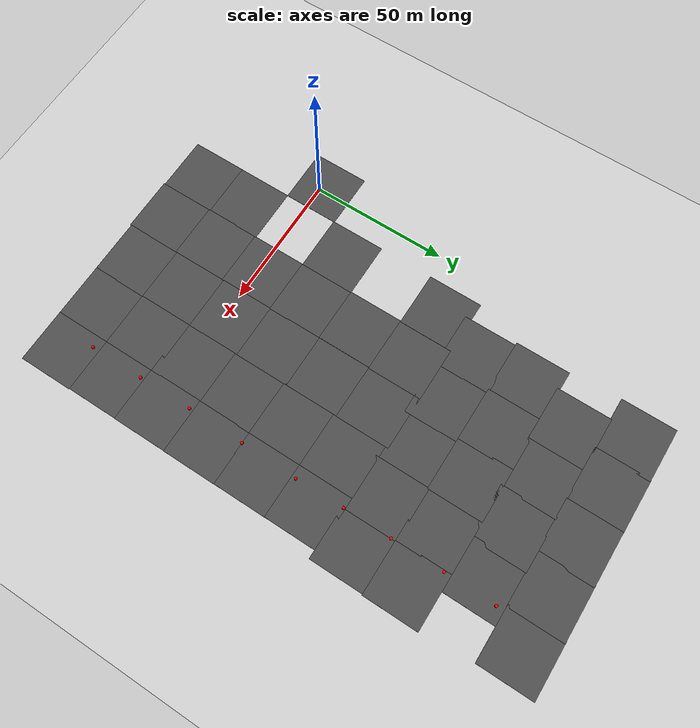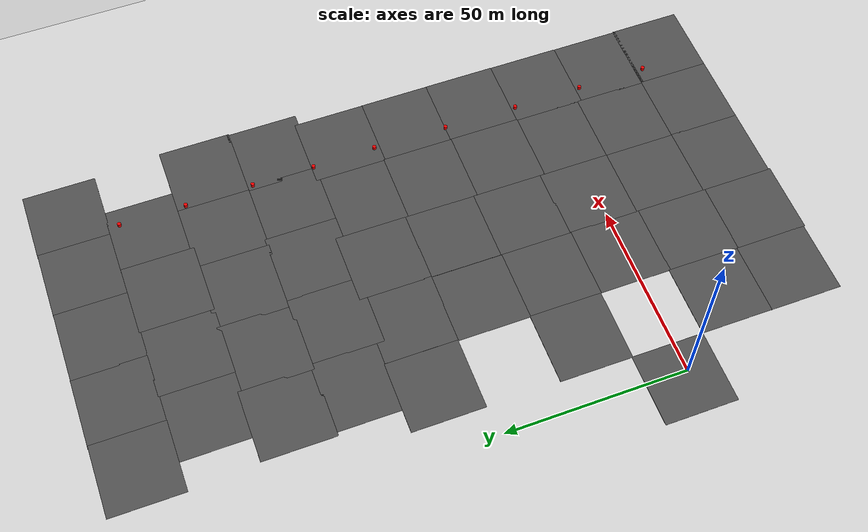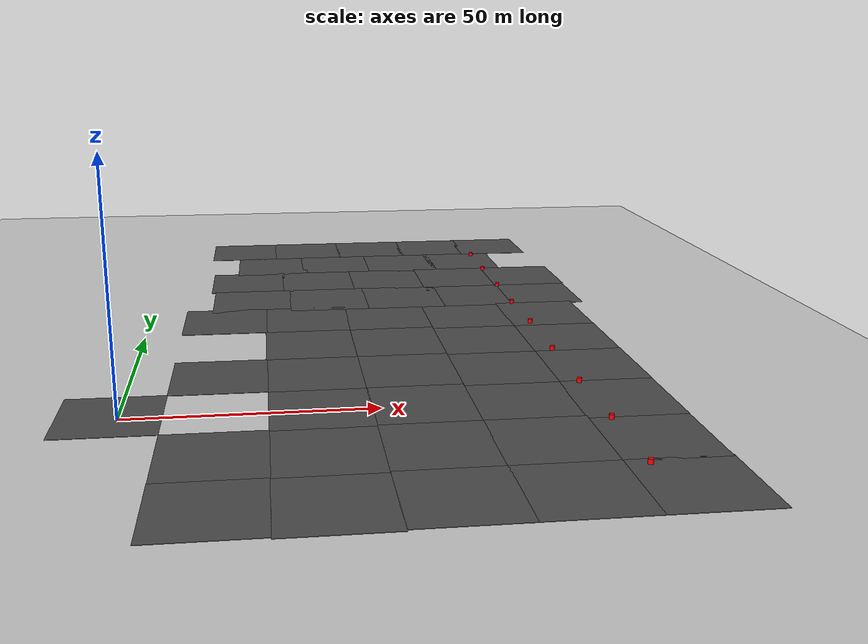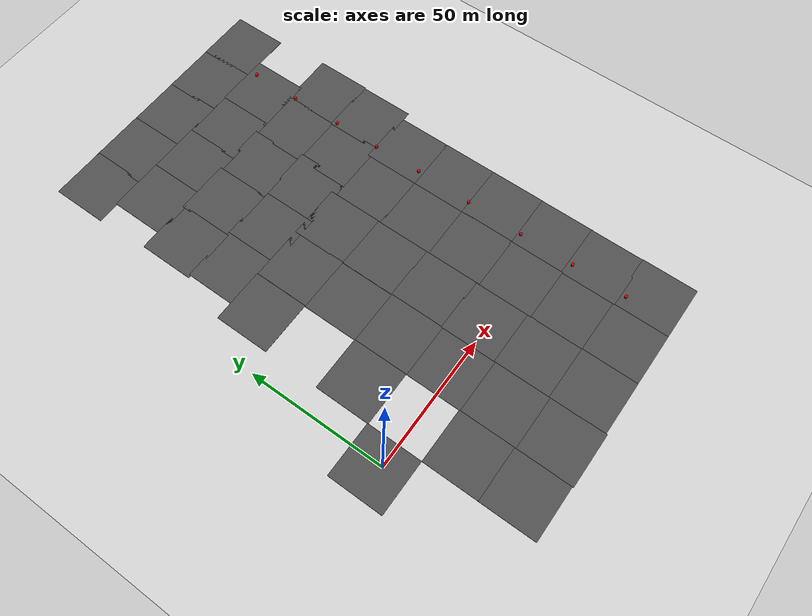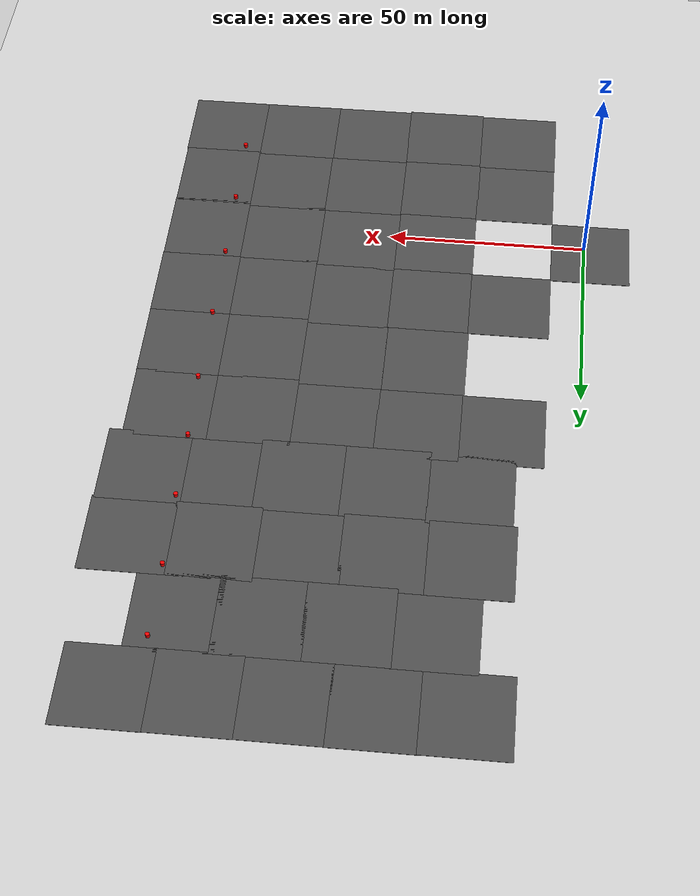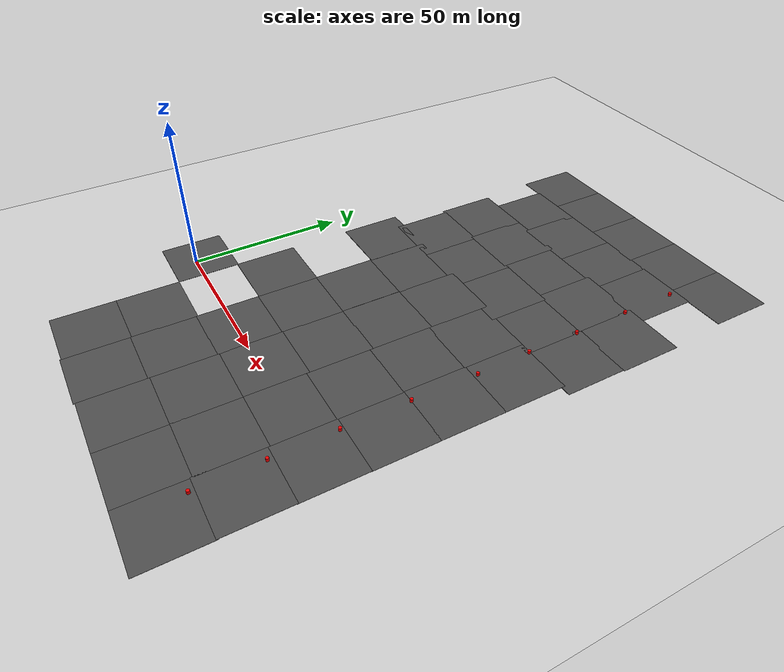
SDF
<sdf version="1.6">
 <world name="default">
  <model name="ground_plane">
   <static>1</static>
   <link name="link">
    <collision name="collision">
     <geometry><plane><normal>0 0 1</normal><size>100 100</size></plane></geometry>
     <surface>
      <contact><collide_bitmask>65535</collide_bitmask></contact>
      <friction><ode><mu>100</mu><mu2>50</mu2></ode></friction>
     </surface>
    </collision>
    <visual name="visual">
     <cast_shadows>0</cast_shadows>
     <geometry><plane><normal>0 0 1</normal><size>100 100</size></plane></geometry>
     <material>
      <script><uri>file://media/materials/scripts/gazebo.material</uri><name>Gazebo/Grey</name></script>
     </material>
    </visual>
   </link>
  </model>
  <model name="asphalt_plane">
   <static>1</static>
   <link name="link">
    <collision name="collision"><geometry><box><size>20 20 0.1</size></box></geometry></collision>
    <visual name="visual">
     <cast_shadows>0</cast_shadows>
     <geometry><box><size>20 20 0.1</size></box></geometry>
     <material>
      <script>
       <uri>model://asphalt_plane/materials/scripts</uri>
       <uri>model://asphalt_plane/materials/textures</uri>
       <name>vrc/asphalt</name>
      </script>
     </material>
    </visual>
   </link>
   <pose>-1.68563 1.69754 0 0 -0 0</pose>
  </model>
  <model name="asphalt_plane_9">
   <static>1</static>
   <link name="link">
    <collision name="collision"><geometry><box><size>20 20 0.1</size></box></geometry></collision>
    <visual name="visual">
     <cast_shadows>0</cast_shadows>
     <geometry><box><size>20 20 0.1</size></box></geometry>
     <material>
      <script>
       <uri>model://asphalt_plane/materials/scripts</uri>
       <uri>model://asphalt_plane/materials/textures</uri>
       <name>vrc/asphalt</name>
      </script>
     </material>
    </visual>
   </link>
   <pose>18.2406 -38.2098 0 0 -0 0</pose>
  </model>
  <model name="asphalt_plane_10">
   <static>1</static>
   <link name="link">
    <collision name="collision"><geometry><box><size>20 20 0.1</size></box></geometry></collision>
    <visual name="visual">
     <cast_shadows>0</cast_shadows>
     <geometry><box><size>20 20 0.1</size></box></geometry>
     <material>
      <script>
       <uri>model://asphalt_plane/materials/scripts</uri>
       <uri>model://asphalt_plane/materials/textures</uri>
       <name>vrc/asphalt</name>
      </script>
     </material>
    </visual>
   </link>
   <pose>18.2862 -18.2897 0 0 -0 0</pose>
  </model>
  <model name="asphalt_plane_12">
   <static>1</static>
   <link name="link">
    <collision name="collision"><geometry><box><size>20 20 0.1</size></box></geometry></collision>
    <visual name="visual">
     <cast_shadows>0</cast_shadows>
     <geometry><box><size>20 20 0.1</size></box></geometry>
     <material>
      <script>
       <uri>model://asphalt_plane/materials/scripts</uri>
       <uri>model://asphalt_plane/materials/textures</uri>
       <name>vrc/asphalt</name>
      </script>
     </material>
    </visual>
   </link>
   <pose>18.2121 21.3576 0 0 -0 0</pose>
  </model>
  <model name="asphalt_plane_14">
   <static>1</static>
   <link name="link">
    <collision name="collision"><geometry><box><size>20 20 0.1</size></box></geometry></collision>
    <visual name="visual">
     <cast_shadows>0</cast_shadows>
     <geometry><box><size>20 20 0.1</size></box></geometry>
     <material>
      <script>
       <uri>model://asphalt_plane/materials/scripts</uri>
       <uri>model://asphalt_plane/materials/textures</uri>
       <name>vrc/asphalt</name>
      </script>
     </material>
    </visual>
   </link>
   <pose>37.9263 41.1508 0 0 -0 0</pose>
  </model>
  <model name="asphalt_plane_15">
   <static>1</static>
   <link name="link">
    <collision name="collision"><geometry><box><size>20 20 0.1</size></box></geometry></collision>
    <visual name="visual">
     <cast_shadows>0</cast_shadows>
     <geometry><box><size>20 20 0.1</size></box></geometry>
     <material>
      <script>
       <uri>model://asphalt_plane/materials/scripts</uri>
       <uri>model://asphalt_plane/materials/textures</uri>
       <name>vrc/asphalt</name>
      </script>
     </material>
    </visual>
   </link>
   <pose>38.1901 21.1895 0 0 -0 0</pose>
  </model>
  <model name="asphalt_plane_16">
   <static>1</static>
   <link name="link">
    <collision name="collision"><geometry><box><size>20 20 0.1</size></box></geometry></collision>
    <visual name="visual">
     <cast_shadows>0</cast_shadows>
     <geometry><box><size>20 20 0.1</size></box></geometry>
     <material>
      <script>
       <uri>model://asphalt_plane/materials/scripts</uri>
       <uri>model://asphalt_plane/materials/textures</uri>
       <name>vrc/asphalt</name>
      </script>
     </material>
    </visual>
   </link>
   <pose>38.1399 1.20757 0 0 -0 0</pose>
  </model>
  <model name="asphalt_plane_17">
   <static>1</static>
   <link name="link">
    <collision name="collision"><geometry><box><size>20 20 0.1</size></box></geometry></collision>
    <visual name="visual">
     <cast_shadows>0</cast_shadows>
     <geometry><box><size>20 20 0.1</size></box></geometry>
     <material>
      <script>
       <uri>model://asphalt_plane/materials/scripts</uri>
       <uri>model://asphalt_plane/materials/textures</uri>
       <name>vrc/asphalt</name>
      </script>
     </material>
    </visual>
   </link>
   <pose>38.0686 -18.6552 0 0 -0 0</pose>
  </model>
  <model name="asphalt_plane_18">
   <static>1</static>
   <link name="link">
    <collision name="collision"><geometry><box><size>20 20 0.1</size></box></geometry></collision>
    <visual name="visual">
     <cast_shadows>0</cast_shadows>
     <geometry><box><size>20 20 0.1</size></box></geometry>
     <material>
      <script>
       <uri>model://asphalt_plane/materials/scripts</uri>
       <uri>model://asphalt_plane/materials/textures</uri>
       <name>vrc/asphalt</name>
      </script>
     </material>
    </visual>
   </link>
   <pose>38.1798 -38.5906 0 0 -0 0</pose>
  </model>
  <model name="asphalt_plane_24">
   <static>1</static>
   <link name="link">
    <collision name="collision"><geometry><box><size>20 20 0.1</size></box></geometry></collision>
    <visual name="visual">
     <cast_shadows>0</cast_shadows>
     <geometry><box><size>20 20 0.1</size></box></geometry>
     <material>
      <script>
       <uri>model://asphalt_plane/materials/scripts</uri>
       <uri>model://asphalt_plane/materials/textures</uri>
       <name>vrc/asphalt</name>
      </script>
     </material>
    </visual>
   </link>
   <pose>38.2357 61.0231 0 0 -0 0</pose>
  </model>
  <model name="asphalt_plane_25">
   <static>1</static>
   <link name="link">
    <collision name="collision"><geometry><box><size>20 20 0.1</size></box></geometry></collision>
    <visual name="visual">
     <cast_shadows>0</cast_shadows>
     <geometry><box><size>20 20 0.1</size></box></geometry>
     <material>
      <script>
       <uri>model://asphalt_plane/materials/scripts</uri>
       <uri>model://asphalt_plane/materials/textures</uri>
       <name>vrc/asphalt</name>
      </script>
     </material>
    </visual>
   </link>
   <pose>18.22 61.2506 0 0 -0 0</pose>
  </model>
  <model name="asphalt_plane_29">
   <static>1</static>
   <link name="link">
    <collision name="collision"><geometry><box><size>20 20 0.1</size></box></geometry></collision>
    <visual name="visual">
     <cast_shadows>0</cast_shadows>
     <geometry><box><size>20 20 0.1</size></box></geometry>
     <material>
      <script>
       <uri>model://asphalt_plane/materials/scripts</uri>
       <uri>model://asphalt_plane/materials/textures</uri>
       <name>vrc/asphalt</name>
      </script>
     </material>
    </visual>
   </link>
   <pose>58.0302 60.9847 0 0 -0 0</pose>
  </model>
  <model name="asphalt_plane_30">
   <static>1</static>
   <link name="link">
    <collision name="collision"><geometry><box><size>20 20 0.1</size></box></geometry></collision>
    <visual name="visual">
     <cast_shadows>0</cast_shadows>
     <geometry><box><size>20 20 0.1</size></box></geometry>
     <material>
      <script>
       <uri>model://asphalt_plane/materials/scripts</uri>
       <uri>model://asphalt_plane/materials/textures</uri>
       <name>vrc/asphalt</name>
      </script>
     </material>
    </visual>
   </link>
   <pose>57.9845 41.105 0 0 -0 0</pose>
  </model>
  <model name="asphalt_plane_31">
   <static>1</static>
   <link name="link">
    <collision name="collision"><geometry><box><size>20 20 0.1</size></box></geometry></collision>
    <visual name="visual">
     <cast_shadows>0</cast_shadows>
     <geometry><box><size>20 20 0.1</size></box></geometry>
     <material>
      <script>
       <uri>model://asphalt_plane/materials/scripts</uri>
       <uri>model://asphalt_plane/materials/textures</uri>
       <name>vrc/asphalt</name>
      </script>
     </material>
    </visual>
   </link>
   <pose>57.9861 21.3964 0 0 -0 0</pose>
  </model>
  <model name="asphalt_plane_32">
   <static>1</static>
   <link name="link">
    <collision name="collision"><geometry><box><size>20 20 0.1</size></box></geometry></collision>
    <visual name="visual">
     <cast_shadows>0</cast_shadows>
     <geometry><box><size>20 20 0.1</size></box></geometry>
     <material>
      <script>
       <uri>model://asphalt_plane/materials/scripts</uri>
       <uri>model://asphalt_plane/materials/textures</uri>
       <name>vrc/asphalt</name>
      </script>
     </material>
    </visual>
   </link>
   <pose>57.9543 1.80732 0 0 -0 0</pose>
  </model>
  <model name="asphalt_plane_33">
   <static>1</static>
   <link name="link">
    <collision name="collision"><geometry><box><size>20 20 0.1</size></box></geometry></collision>
    <visual name="visual">
     <cast_shadows>0</cast_shadows>
     <geometry><box><size>20 20 0.1</size></box></geometry>
     <material>
      <script>
       <uri>model://asphalt_plane/materials/scripts</uri>
       <uri>model://asphalt_plane/materials/textures</uri>
       <name>vrc/asphalt</name>
      </script>
     </material>
    </visual>
   </link>
   <pose>58.0356 -18.1613 0 0 -0 0</pose>
  </model>
  <model name="asphalt_plane_34">
   <static>1</static>
   <link name="link">
    <collision name="collision"><geometry><box><size>20 20 0.1</size></box></geometry></collision>
    <visual name="visual">
     <cast_shadows>0</cast_shadows>
     <geometry><box><size>20 20 0.1</size></box></geometry>
     <material>
      <script>
       <uri>model://asphalt_plane/materials/scripts</uri>
       <uri>model://asphalt_plane/materials/textures</uri>
       <name>vrc/asphalt</name>
      </script>
     </material>
    </visual>
   </link>
   <pose>58.0553 -38.1405 0 0 -0 0</pose>
  </model>
  <model name="asphalt_plane_35">
   <static>1</static>
   <link name="link">
    <collision name="collision"><geometry><box><size>20 20 0.1</size></box></geometry></collision>
    <visual name="visual">
     <cast_shadows>0</cast_shadows>
     <geometry><box><size>20 20 0.1</size></box></geometry>
     <material>
      <script>
       <uri>model://asphalt_plane/materials/scripts</uri>
       <uri>model://asphalt_plane/materials/textures</uri>
       <name>vrc/asphalt</name>
      </script>
     </material>
    </visual>
   </link>
   <pose>77.8688 -38.1153 0 0 -0 0</pose>
  </model>
  <model name="asphalt_plane_36">
   <static>1</static>
   <link name="link">
    <collision name="collision"><geometry><box><size>20 20 0.1</size></box></geometry></collision>
    <visual name="visual">
     <cast_shadows>0</cast_shadows>
     <geometry><box><size>20 20 0.1</size></box></geometry>
     <material>
      <script>
       <uri>model://asphalt_plane/materials/scripts</uri>
       <uri>model://asphalt_plane/materials/textures</uri>
       <name>vrc/asphalt</name>
      </script>
     </material>
    </visual>
   </link>
   <pose>77.8708 -18.1634 0 0 -0 0</pose>
  </model>
  <model name="asphalt_plane_37">
   <static>1</static>
   <link name="link">
    <collision name="collision"><geometry><box><size>20 20 0.1</size></box></geometry></collision>
    <visual name="visual">
     <cast_shadows>0</cast_shadows>
     <geometry><box><size>20 20 0.1</size></box></geometry>
     <material>
      <script>
       <uri>model://asphalt_plane/materials/scripts</uri>
       <uri>model://asphalt_plane/materials/textures</uri>
       <name>vrc/asphalt</name>
      </script>
     </material>
    </visual>
   </link>
   <pose>77.8641 0.739913 0 0 -0 0</pose>
  </model>
  <model name="asphalt_plane_38">
   <static>1</static>
   <link name="link">
    <collision name="collision"><geometry><box><size>20 20 0.1</size></box></geometry></collision>
    <visual name="visual">
     <cast_shadows>0</cast_shadows>
     <geometry><box><size>20 20 0.1</size></box></geometry>
     <material>
      <script>
       <uri>model://asphalt_plane/materials/scripts</uri>
       <uri>model://asphalt_plane/materials/textures</uri>
       <name>vrc/asphalt</name>
      </script>
     </material>
    </visual>
   </link>
   <pose>77.9741 20.3819 0 0 -0 0</pose>
  </model>
  <model name="asphalt_plane_39">
   <static>1</static>
   <link name="link">
    <collision name="collision"><geometry><box><size>20 20 0.1</size></box></geometry></collision>
    <visual name="visual">
     <cast_shadows>0</cast_shadows>
     <geometry><box><size>20 20 0.1</size></box></geometry>
     <material>
      <script>
       <uri>model://asphalt_plane/materials/scripts</uri>
       <uri>model://asphalt_plane/materials/textures</uri>
       <name>vrc/asphalt</name>
      </script>
     </material>
    </visual>
   </link>
   <pose>77.9123 40.3011 0 0 -0 0</pose>
  </model>
  <model name="asphalt_plane_40">
   <static>1</static>
   <link name="link">
    <collision name="collision"><geometry><box><size>20 20 0.1</size></box></geometry></collision>
    <visual name="visual">
     <cast_shadows>0</cast_shadows>
     <geometry><box><size>20 20 0.1</size></box></geometry>
     <material>
      <script>
       <uri>model://asphalt_plane/materials/scripts</uri>
       <uri>model://asphalt_plane/materials/textures</uri>
       <name>vrc/asphalt</name>
      </script>
     </material>
    </visual>
   </link>
   <pose>77.8982 59.9632 0 0 -0 0</pose>
  </model>
  <model name="asphalt_plane_41">
   <static>1</static>
   <link name="link">
    <collision name="collision"><geometry><box><size>20 20 0.1</size></box></geometry></collision>
    <visual name="visual">
     <cast_shadows>0</cast_shadows>
     <geometry><box><size>20 20 0.1</size></box></geometry>
     <material>
      <script>
       <uri>model://asphalt_plane/materials/scripts</uri>
       <uri>model://asphalt_plane/materials/textures</uri>
       <name>vrc/asphalt</name>
      </script>
     </material>
    </visual>
   </link>
   <pose>97.6549 59.9109 0 0 -0 0</pose>
  </model>
  <model name="asphalt_plane_42">
   <static>1</static>
   <link name="link">
    <collision name="collision"><geometry><box><size>20 20 0.1</size></box></geometry></collision>
    <visual name="visual">
     <cast_shadows>0</cast_shadows>
     <geometry><box><size>20 20 0.1</size></box></geometry>
     <material>
      <script>
       <uri>model://asphalt_plane/materials/scripts</uri>
       <uri>model://asphalt_plane/materials/textures</uri>
       <name>vrc/asphalt</name>
      </script>
     </material>
    </visual>
   </link>
   <pose>97.6996 40.3637 0 0 -0 0</pose>
  </model>
  <model name="asphalt_plane_43">
   <static>1</static>
   <link name="link">
    <collision name="collision"><geometry><box><size>20 20 0.1</size></box></geometry></collision>
    <visual name="visual">
     <cast_shadows>0</cast_shadows>
     <geometry><box><size>20 20 0.1</size></box></geometry>
     <material>
      <script>
       <uri>model://asphalt_plane/materials/scripts</uri>
       <uri>model://asphalt_plane/materials/textures</uri>
       <name>vrc/asphalt</name>
      </script>
     </material>
    </visual>
   </link>
   <pose>97.7369 20.5205 0 0 -0 0</pose>
  </model>
  <model name="asphalt_plane_44">
   <static>1</static>
   <link name="link">
    <collision name="collision"><geometry><box><size>20 20 0.1</size></box></geometry></collision>
    <visual name="visual">
     <cast_shadows>0</cast_shadows>
     <geometry><box><size>20 20 0.1</size></box></geometry>
     <material>
      <script>
       <uri>model://asphalt_plane/materials/scripts</uri>
       <uri>model://asphalt_plane/materials/textures</uri>
       <name>vrc/asphalt</name>
      </script>
     </material>
    </visual>
   </link>
   <pose>97.6593 0.629561 0 0 -0 0</pose>
  </model>
  <model name="asphalt_plane_45">
   <static>1</static>
   <link name="link">
    <collision name="collision"><geometry><box><size>20 20 0.1</size></box></geometry></collision>
    <visual name="visual">
     <cast_shadows>0</cast_shadows>
     <geometry><box><size>20 20 0.1</size></box></geometry>
     <material>
      <script>
       <uri>model://asphalt_plane/materials/scripts</uri>
       <uri>model://asphalt_plane/materials/textures</uri>
       <name>vrc/asphalt</name>
      </script>
     </material>
    </visual>
   </link>
   <pose>97.5885 -18.7822 0 0 -0 0</pose>
  </model>
  <model name="asphalt_plane_46">
   <static>1</static>
   <link name="link">
    <collision name="collision"><geometry><box><size>20 20 0.1</size></box></geometry></collision>
    <visual name="visual">
     <cast_shadows>0</cast_shadows>
     <geometry><box><size>20 20 0.1</size></box></geometry>
     <material>
      <script>
       <uri>model://asphalt_plane/materials/scripts</uri>
       <uri>model://asphalt_plane/materials/textures</uri>
       <name>vrc/asphalt</name>
      </script>
     </material>
    </visual>
   </link>
   <pose>97.7762 -38.112 0 0 -0 0</pose>
  </model>
  <model name="asphalt_plane_82">
   <static>1</static>
   <link name="link">
    <collision name="collision"><geometry><box><size>20 20 0.1</size></box></geometry></collision>
    <visual name="visual">
     <cast_shadows>0</cast_shadows>
     <geometry><box><size>20 20 0.1</size></box></geometry>
     <material>
      <script>
       <uri>model://asphalt_plane/materials/scripts</uri>
       <uri>model://asphalt_plane/materials/textures</uri>
       <name>vrc/asphalt</name>
      </script>
     </material>
    </visual>
   </link>
   <pose>100.805 78.7666 0 0 -0 0</pose>
  </model>
  <model name="asphalt_plane_83">
   <static>1</static>
   <link name="link">
    <collision name="collision"><geometry><box><size>20 20 0.1</size></box></geometry></collision>
    <visual name="visual">
     <cast_shadows>0</cast_shadows>
     <geometry><box><size>20 20 0.1</size></box></geometry>
     <material>
      <script>
       <uri>model://asphalt_plane/materials/scripts</uri>
       <uri>model://asphalt_plane/materials/textures</uri>
       <name>vrc/asphalt</name>
      </script>
     </material>
    </visual>
   </link>
   <pose>81.9504 78.8291 0 0 -0 0</pose>
  </model>
  <model name="asphalt_plane_84">
   <static>1</static>
   <link name="link">
    <collision name="collision"><geometry><box><size>20 20 0.1</size></box></geometry></collision>
    <visual name="visual">
     <cast_shadows>0</cast_shadows>
     <geometry><box><size>20 20 0.1</size></box></geometry>
     <material>
      <script>
       <uri>model://asphalt_plane/materials/scripts</uri>
       <uri>model://asphalt_plane/materials/textures</uri>
       <name>vrc/asphalt</name>
      </script>
     </material>
    </visual>
   </link>
   <pose>64.2607 78.8079 0 0 -0 0</pose>
  </model>
  <model name="asphalt_plane_85">
   <static>1</static>
   <link name="link">
    <collision name="collision"><geometry><box><size>20 20 0.1</size></box></geometry></collision>
    <visual name="visual">
     <cast_shadows>0</cast_shadows>
     <geometry><box><size>20 20 0.1</size></box></geometry>
     <material>
      <script>
       <uri>model://asphalt_plane/materials/scripts</uri>
       <uri>model://asphalt_plane/materials/textures</uri>
       <name>vrc/asphalt</name>
      </script>
     </material>
    </visual>
   </link>
   <pose>44.4433 78.8753 0 0 -0 0</pose>
  </model>
  <model name="asphalt_plane_86">
   <static>1</static>
   <link name="link">
    <collision name="collision"><geometry><box><size>20 20 0.1</size></box></geometry></collision>
    <visual name="visual">
     <cast_shadows>0</cast_shadows>
     <geometry><box><size>20 20 0.1</size></box></geometry>
     <material>
      <script>
       <uri>model://asphalt_plane/materials/scripts</uri>
       <uri>model://asphalt_plane/materials/textures</uri>
       <name>vrc/asphalt</name>
      </script>
     </material>
    </visual>
   </link>
   <pose>24.6276 78.9287 0 0 -0 0</pose>
  </model>
  <model name="asphalt_plane_134">
   <static>1</static>
   <link name="link">
    <collision name="collision"><geometry><box><size>20 20 0.1</size></box></geometry></collision>
    <visual name="visual">
     <cast_shadows>0</cast_shadows>
     <geometry><box><size>20 20 0.1</size></box></geometry>
     <material>
      <script>
       <uri>model://asphalt_plane/materials/scripts</uri>
       <uri>model://asphalt_plane/materials/textures</uri>
       <name>vrc/asphalt</name>
      </script>
     </material>
    </visual>
   </link>
   <pose>101.156 98.2123 0 0 -0 0</pose>
  </model>
  <model name="asphalt_plane_135">
   <static>1</static>
   <link name="link">
    <collision name="collision"><geometry><box><size>20 20 0.1</size></box></geometry></collision>
    <visual name="visual">
     <cast_shadows>0</cast_shadows>
     <geometry><box><size>20 20 0.1</size></box></geometry>
     <material>
      <script>
       <uri>model://asphalt_plane/materials/scripts</uri>
       <uri>model://asphalt_plane/materials/textures</uri>
       <name>vrc/asphalt</name>
      </script>
     </material>
    </visual>
   </link>
   <pose>81.5934 98.2103 0 0 -0 0</pose>
  </model>
  <model name="asphalt_plane_136">
   <static>1</static>
   <link name="link">
    <collision name="collision"><geometry><box><size>20 20 0.1</size></box></geometry></collision>
    <visual name="visual">
     <cast_shadows>0</cast_shadows>
     <geometry><box><size>20 20 0.1</size></box></geometry>
     <material>
      <script>
       <uri>model://asphalt_plane/materials/scripts</uri>
       <uri>model://asphalt_plane/materials/textures</uri>
       <name>vrc/asphalt</name>
      </script>
     </material>
    </visual>
   </link>
   <pose>62.3415 98.2044 0 0 -0 0</pose>
  </model>
  <model name="asphalt_plane_137">
   <static>1</static>
   <link name="link">
    <collision name="collision"><geometry><box><size>20 20 0.1</size></box></geometry></collision>
    <visual name="visual">
     <cast_shadows>0</cast_shadows>
     <geometry><box><size>20 20 0.1</size></box></geometry>
     <material>
      <script>
       <uri>model://asphalt_plane/materials/scripts</uri>
       <uri>model://asphalt_plane/materials/textures</uri>
       <name>vrc/asphalt</name>
      </script>
     </material>
    </visual>
   </link>
   <pose>42.9901 98.1537 0 0 -0 0</pose>
  </model>
  <model name="asphalt_plane_138">
   <static>1</static>
   <link name="link">
    <collision name="collision"><geometry><box><size>20 20 0.1</size></box></geometry></collision>
    <visual name="visual">
     <cast_shadows>0</cast_shadows>
     <geometry><box><size>20 20 0.1</size></box></geometry>
     <material>
      <script>
       <uri>model://asphalt_plane/materials/scripts</uri>
       <uri>model://asphalt_plane/materials/textures</uri>
       <name>vrc/asphalt</name>
      </script>
     </material>
    </visual>
   </link>
   <pose>23.6062 98.2063 0 0 -0 0</pose>
  </model>
  <model name="asphalt_plane_156">
   <static>1</static>
   <link name="link">
    <collision name="collision"><geometry><box><size>20 20 0.1</size></box></geometry></collision>
    <visual name="visual">
     <cast_shadows>0</cast_shadows>
     <geometry><box><size>20 20 0.1</size></box></geometry>
     <material>
      <script>
       <uri>model://asphalt_plane/materials/scripts</uri>
       <uri>model://asphalt_plane/materials/textures</uri>
       <name>vrc/asphalt</name>
      </script>
     </material>
    </visual>
   </link>
   <pose>87.2132 117.16 0 0 -0 0</pose>
  </model>
  <model name="asphalt_plane_157">
   <static>1</static>
   <link name="link">
    <collision name="collision"><geometry><box><size>20 20 0.1</size></box></geometry></collision>
    <visual name="visual">
     <cast_shadows>0</cast_shadows>
     <geometry><box><size>20 20 0.1</size></box></geometry>
     <material>
      <script>
       <uri>model://asphalt_plane/materials/scripts</uri>
       <uri>model://asphalt_plane/materials/textures</uri>
       <name>vrc/asphalt</name>
      </script>
     </material>
    </visual>
   </link>
   <pose>68.4639 117.123 0 0 -0 0</pose>
  </model>
  <model name="asphalt_plane_158">
   <static>1</static>
   <link name="link">
    <collision name="collision"><geometry><box><size>20 20 0.1</size></box></geometry></collision>
    <visual name="visual">
     <cast_shadows>0</cast_shadows>
     <geometry><box><size>20 20 0.1</size></box></geometry>
     <material>
      <script>
       <uri>model://asphalt_plane/materials/scripts</uri>
       <uri>model://asphalt_plane/materials/textures</uri>
       <name>vrc/asphalt</name>
      </script>
     </material>
    </visual>
   </link>
   <pose>49.1624 117.107 0 0 -0 0</pose>
  </model>
  <model name="asphalt_plane_159">
   <static>1</static>
   <link name="link">
    <collision name="collision"><geometry><box><size>20 20 0.1</size></box></geometry></collision>
    <visual name="visual">
     <cast_shadows>0</cast_shadows>
     <geometry><box><size>20 20 0.1</size></box></geometry>
     <material>
      <script>
       <uri>model://asphalt_plane/materials/scripts</uri>
       <uri>model://asphalt_plane/materials/textures</uri>
       <name>vrc/asphalt</name>
      </script>
     </material>
    </visual>
   </link>
   <pose>30.409 117.18 0 0 -0 0</pose>
  </model>
  <model name="asphalt_plane_175">
   <static>1</static>
   <link name="link">
    <collision name="collision"><geometry><box><size>20 20 0.1</size></box></geometry></collision>
    <visual name="visual">
     <cast_shadows>0</cast_shadows>
     <geometry><box><size>20 20 0.1</size></box></geometry>
     <material>
      <script>
       <uri>model://asphalt_plane/materials/scripts</uri>
       <uri>model://asphalt_plane/materials/textures</uri>
       <name>vrc/asphalt</name>
      </script>
     </material>
    </visual>
   </link>
   <pose>99.5105 136.82 0 0 -0 0</pose>
  </model>
  <model name="asphalt_plane_176">
   <static>1</static>
   <link name="link">
    <collision name="collision"><geometry><box><size>20 20 0.1</size></box></geometry></collision>
    <visual name="visual">
     <cast_shadows>0</cast_shadows>
     <geometry><box><size>20 20 0.1</size></box></geometry>
     <material>
      <script>
       <uri>model://asphalt_plane/materials/scripts</uri>
       <uri>model://asphalt_plane/materials/textures</uri>
       <name>vrc/asphalt</name>
      </script>
     </material>
    </visual>
   </link>
   <pose>80.3668 136.745 0 0 -0 0</pose>
  </model>
  <model name="asphalt_plane_177">
   <static>1</static>
   <link name="link">
    <collision name="collision"><geometry><box><size>20 20 0.1</size></box></geometry></collision>
    <visual name="visual">
     <cast_shadows>0</cast_shadows>
     <geometry><box><size>20 20 0.1</size></box></geometry>
     <material>
      <script>
       <uri>model://asphalt_plane/materials/scripts</uri>
       <uri>model://asphalt_plane/materials/textures</uri>
       <name>vrc/asphalt</name>
      </script>
     </material>
    </visual>
   </link>
   <pose>61.1368 136.705 0 0 -0 0</pose>
  </model>
  <model name="asphalt_plane_178">
   <static>1</static>
   <link name="link">
    <collision name="collision"><geometry><box><size>20 20 0.1</size></box></geometry></collision>
    <visual name="visual">
     <cast_shadows>0</cast_shadows>
     <geometry><box><size>20 20 0.1</size></box></geometry>
     <material>
      <script>
       <uri>model://asphalt_plane/materials/scripts</uri>
       <uri>model://asphalt_plane/materials/textures</uri>
       <name>vrc/asphalt</name>
      </script>
     </material>
    </visual>
   </link>
   <pose>41.4762 136.759 0 0 -0 0</pose>
  </model>
  <model name="asphalt_plane_179">
   <static>1</static>
   <link name="link">
    <collision name="collision"><geometry><box><size>20 20 0.1</size></box></geometry></collision>
    <visual name="visual">
     <cast_shadows>0</cast_shadows>
     <geometry><box><size>20 20 0.1</size></box></geometry>
     <material>
      <script>
       <uri>model://asphalt_plane/materials/scripts</uri>
       <uri>model://asphalt_plane/materials/textures</uri>
       <name>vrc/asphalt</name>
      </script>
     </material>
    </visual>
   </link>
   <pose>22.3366 136.684 0 0 -0 0</pose>
  </model>
  <model name="station_61">
   <link name="link">
    <inertial>
     <mass>1</mass>
     <inertia><ixx>0.145833</ixx><ixy>0</ixy><ixz>0</ixz><iyy>0.145833</iyy><iyz>0</iyz><izz>0.125</izz></inertia>
    </inertial>
    <visual name="visual">
     <geometry><cylinder><radius>0.5</radius><length>1</length></cylinder></geometry>
     <material>
      <script><name>Gazebo/Grey</name><uri>file://media/materials/scripts/gazebo.material</uri></script>
      <shader type="vertex"><normal_map>__default__</normal_map></shader>
      <ambient>1 0 0 0</ambient>
      <diffuse>0 0 0 1</diffuse>
      <specular>0.91 0.01 0.01 1</specular>
      <emissive>0 0 0 1</emissive>
     </material>
    </visual>
    <collision name="collision">
     <geometry><cylinder><radius>0.5</radius><length>1</length></cylinder></geometry>
     <surface>
      <friction>
       <ode><mu>1</mu><mu2>1</mu2><fdir1>0 0 0</fdir1><slip1>0</slip1><slip2>0</slip2></ode>
       <torsional>
        <coefficient>1</coefficient>
        <patch_radius>0</patch_radius>
        <surface_radius>0</surface_radius>
        <use_patch_radius>1</use_patch_radius>
        <ode><slip>0</slip></ode>
       </torsional>
      </friction>
      <bounce><restitution_coefficient>0</restitution_coefficient><threshold>1e+06</threshold></bounce>
      <contact>
       <collide_without_contact>0</collide_without_contact>
       <collide_without_contact_bitmask>1</collide_without_contact_bitmask>
       <collide_bitmask>1</collide_bitmask>
       <ode>
        <soft_cfm>0</soft_cfm>
        <soft_erp>0.2</soft_erp>
        <kp>1e+13</kp>
        <kd>1</kd>
        <max_vel>0.01</max_vel>
        <min_depth>0</min_depth>
       </ode>
       <bullet>
        <split_impulse>1</split_impulse>
        <split_impulse_penetration_threshold>-0.01</split_impulse_penetration_threshold>
        <soft_cfm>0</soft_cfm>
        <soft_erp>0.2</soft_erp>
        <kp>1e+13</kp>
        <kd>1</kd>
       </bullet>
      </contact>
     </surface>
    </collision>
   </link>
   <static>1</static>
   <pose>91.9811 -30.365 0.619557 0 -0 0</pose>
  </model>
  <model name="station_62">
   <link name="link">
    <inertial>
     <mass>1</mass>
     <inertia><ixx>0.145833</ixx><ixy>0</ixy><ixz>0</ixz><iyy>0.145833</iyy><iyz>0</iyz><izz>0.125</izz></inertia>
    </inertial>
    <visual name="visual">
     <geometry><cylinder><radius>0.5</radius><length>1</length></cylinder></geometry>
     <material>
      <script><name>Gazebo/Grey</name><uri>file://media/materials/scripts/gazebo.material</uri></script>
      <shader type="vertex"><normal_map>__default__</normal_map></shader>
      <ambient>1 0 0 0</ambient>
      <diffuse>0 0 0 1</diffuse>
      <specular>0.91 0.01 0.01 1</specular>
      <emissive>0 0 0 1</emissive>
     </material>
    </visual>
    <collision name="collision">
     <geometry><cylinder><radius>0.5</radius><length>1</length></cylinder></geometry>
     <surface>
      <friction>
       <ode><mu>1</mu><mu2>1</mu2><fdir1>0 0 0</fdir1><slip1>0</slip1><slip2>0</slip2></ode>
       <torsional>
        <coefficient>1</coefficient>
        <patch_radius>0</patch_radius>
        <surface_radius>0</surface_radius>
        <use_patch_radius>1</use_patch_radius>
        <ode><slip>0</slip></ode>
       </torsional>
      </friction>
      <bounce><restitution_coefficient>0</restitution_coefficient><threshold>1e+06</threshold></bounce>
      <contact>
       <collide_without_contact>0</collide_without_contact>
       <collide_without_contact_bitmask>1</collide_without_contact_bitmask>
       <collide_bitmask>1</collide_bitmask>
       <ode>
        <soft_cfm>0</soft_cfm>
        <soft_erp>0.2</soft_erp>
        <kp>1e+13</kp>
        <kd>1</kd>
        <max_vel>0.01</max_vel>
        <min_depth>0</min_depth>
       </ode>
       <bullet>
        <split_impulse>1</split_impulse>
        <split_impulse_penetration_threshold>-0.01</split_impulse_penetration_threshold>
        <soft_cfm>0</soft_cfm>
        <soft_erp>0.2</soft_erp>
        <kp>1e+13</kp>
        <kd>1</kd>
       </bullet>
      </contact>
     </surface>
    </collision>
   </link>
   <static>1</static>
   <pose>91.931 -10.4313 0.619557 0 -0 0</pose>
  </model>
  <model name="station_63">
   <link name="link">
    <inertial>
     <mass>1</mass>
     <inertia><ixx>0.145833</ixx><ixy>0</ixy><ixz>0</ixz><iyy>0.145833</iyy><iyz>0</iyz><izz>0.125</izz></inertia>
    </inertial>
    <visual name="visual">
     <geometry><cylinder><radius>0.5</radius><length>1</length></cylinder></geometry>
     <material>
      <script><name>Gazebo/Grey</name><uri>file://media/materials/scripts/gazebo.material</uri></script>
      <shader type="vertex"><normal_map>__default__</normal_map></shader>
      <ambient>1 0 0 0</ambient>
      <diffuse>0 0 0 1</diffuse>
      <specular>0.91 0.01 0.01 1</specular>
      <emissive>0 0 0 1</emissive>
     </material>
    </visual>
    <collision name="collision">
     <geometry><cylinder><radius>0.5</radius><length>1</length></cylinder></geometry>
     <surface>
      <friction>
       <ode><mu>1</mu><mu2>1</mu2><fdir1>0 0 0</fdir1><slip1>0</slip1><slip2>0</slip2></ode>
       <torsional>
        <coefficient>1</coefficient>
        <patch_radius>0</patch_radius>
        <surface_radius>0</surface_radius>
        <use_patch_radius>1</use_patch_radius>
        <ode><slip>0</slip></ode>
       </torsional>
      </friction>
      <bounce><restitution_coefficient>0</restitution_coefficient><threshold>1e+06</threshold></bounce>
      <contact>
       <collide_without_contact>0</collide_without_contact>
       <collide_without_contact_bitmask>1</collide_without_contact_bitmask>
       <collide_bitmask>1</collide_bitmask>
       <ode>
        <soft_cfm>0</soft_cfm>
        <soft_erp>0.2</soft_erp>
        <kp>1e+13</kp>
        <kd>1</kd>
        <max_vel>0.01</max_vel>
        <min_depth>0</min_depth>
       </ode>
       <bullet>
        <split_impulse>1</split_impulse>
        <split_impulse_penetration_threshold>-0.01</split_impulse_penetration_threshold>
        <soft_cfm>0</soft_cfm>
        <soft_erp>0.2</soft_erp>
        <kp>1e+13</kp>
        <kd>1</kd>
       </bullet>
      </contact>
     </surface>
    </collision>
   </link>
   <static>1</static>
   <pose>91.7785 9.44936 0.619557 0 -0 0</pose>
  </model>
  <model name="station_64">
   <link name="link">
    <inertial>
     <mass>1</mass>
     <inertia><ixx>0.145833</ixx><ixy>0</ixy><ixz>0</ixz><iyy>0.145833</iyy><iyz>0</iyz><izz>0.125</izz></inertia>
    </inertial>
    <visual name="visual">
     <geometry><cylinder><radius>0.5</radius><length>1</length></cylinder></geometry>
     <material>
      <script><name>Gazebo/Grey</name><uri>file://media/materials/scripts/gazebo.material</uri></script>
      <shader type="vertex"><normal_map>__default__</normal_map></shader>
      <ambient>1 0 0 0</ambient>
      <diffuse>0 0 0 1</diffuse>
      <specular>0.91 0.01 0.01 1</specular>
      <emissive>0 0 0 1</emissive>
     </material>
    </visual>
    <collision name="collision">
     <geometry><cylinder><radius>0.5</radius><length>1</length></cylinder></geometry>
     <surface>
      <friction>
       <ode><mu>1</mu><mu2>1</mu2><fdir1>0 0 0</fdir1><slip1>0</slip1><slip2>0</slip2></ode>
       <torsional>
        <coefficient>1</coefficient>
        <patch_radius>0</patch_radius>
        <surface_radius>0</surface_radius>
        <use_patch_radius>1</use_patch_radius>
        <ode><slip>0</slip></ode>
       </torsional>
      </friction>
      <bounce><restitution_coefficient>0</restitution_coefficient><threshold>1e+06</threshold></bounce>
      <contact>
       <collide_without_contact>0</collide_without_contact>
       <collide_without_contact_bitmask>1</collide_without_contact_bitmask>
       <collide_bitmask>1</collide_bitmask>
       <ode>
        <soft_cfm>0</soft_cfm>
        <soft_erp>0.2</soft_erp>
        <kp>1e+13</kp>
        <kd>1</kd>
        <max_vel>0.01</max_vel>
        <min_depth>0</min_depth>
       </ode>
       <bullet>
        <split_impulse>1</split_impulse>
        <split_impulse_penetration_threshold>-0.01</split_impulse_penetration_threshold>
        <soft_cfm>0</soft_cfm>
        <soft_erp>0.2</soft_erp>
        <kp>1e+13</kp>
        <kd>1</kd>
       </bullet>
      </contact>
     </surface>
    </collision>
   </link>
   <static>1</static>
   <pose>91.9673 30.505 0.619557 0 -0 0</pose>
  </model>
  <model name="station_65">
   <link name="link">
    <inertial>
     <mass>1</mass>
     <inertia><ixx>0.145833</ixx><ixy>0</ixy><ixz>0</ixz><iyy>0.145833</iyy><iyz>0</iyz><izz>0.125</izz></inertia>
    </inertial>
    <visual name="visual">
     <geometry><cylinder><radius>0.5</radius><length>1</length></cylinder></geometry>
     <material>
      <script><name>Gazebo/Grey</name><uri>file://media/materials/scripts/gazebo.material</uri></script>
      <shader type="vertex"><normal_map>__default__</normal_map></shader>
      <ambient>1 0 0 0</ambient>
      <diffuse>0 0 0 1</diffuse>
      <specular>0.91 0.01 0.01 1</specular>
      <emissive>0 0 0 1</emissive>
     </material>
    </visual>
    <collision name="collision">
     <geometry><cylinder><radius>0.5</radius><length>1</length></cylinder></geometry>
     <surface>
      <friction>
       <ode><mu>1</mu><mu2>1</mu2><fdir1>0 0 0</fdir1><slip1>0</slip1><slip2>0</slip2></ode>
       <torsional>
        <coefficient>1</coefficient>
        <patch_radius>0</patch_radius>
        <surface_radius>0</surface_radius>
        <use_patch_radius>1</use_patch_radius>
        <ode><slip>0</slip></ode>
       </torsional>
      </friction>
      <bounce><restitution_coefficient>0</restitution_coefficient><threshold>1e+06</threshold></bounce>
      <contact>
       <collide_without_contact>0</collide_without_contact>
       <collide_without_contact_bitmask>1</collide_without_contact_bitmask>
       <collide_bitmask>1</collide_bitmask>
       <ode>
        <soft_cfm>0</soft_cfm>
        <soft_erp>0.2</soft_erp>
        <kp>1e+13</kp>
        <kd>1</kd>
        <max_vel>0.01</max_vel>
        <min_depth>0</min_depth>
       </ode>
       <bullet>
        <split_impulse>1</split_impulse>
        <split_impulse_penetration_threshold>-0.01</split_impulse_penetration_threshold>
        <soft_cfm>0</soft_cfm>
        <soft_erp>0.2</soft_erp>
        <kp>1e+13</kp>
        <kd>1</kd>
       </bullet>
      </contact>
     </surface>
    </collision>
   </link>
   <static>1</static>
   <pose>92.2983 51.4922 0.619557 0 -0 0</pose>
  </model>
  <model name="station_66">
   <link name="link">
    <inertial>
     <mass>1</mass>
     <inertia><ixx>0.145833</ixx><ixy>0</ixy><ixz>0</ixz><iyy>0.145833</iyy><iyz>0</iyz><izz>0.125</izz></inertia>
    </inertial>
    <visual name="visual">
     <geometry><cylinder><radius>0.5</radius><length>1</length></cylinder></geometry>
     <material>
      <script><name>Gazebo/Grey</name><uri>file://media/materials/scripts/gazebo.material</uri></script>
      <shader type="vertex"><normal_map>__default__</normal_map></shader>
      <ambient>1 0 0 0</ambient>
      <diffuse>0 0 0 1</diffuse>
      <specular>0.91 0.01 0.01 1</specular>
      <emissive>0 0 0 1</emissive>
     </material>
    </visual>
    <collision name="collision">
     <geometry><cylinder><radius>0.5</radius><length>1</length></cylinder></geometry>
     <surface>
      <friction>
       <ode><mu>1</mu><mu2>1</mu2><fdir1>0 0 0</fdir1><slip1>0</slip1><slip2>0</slip2></ode>
       <torsional>
        <coefficient>1</coefficient>
        <patch_radius>0</patch_radius>
        <surface_radius>0</surface_radius>
        <use_patch_radius>1</use_patch_radius>
        <ode><slip>0</slip></ode>
       </torsional>
      </friction>
      <bounce><restitution_coefficient>0</restitution_coefficient><threshold>1e+06</threshold></bounce>
      <contact>
       <collide_without_contact>0</collide_without_contact>
       <collide_without_contact_bitmask>1</collide_without_contact_bitmask>
       <collide_bitmask>1</collide_bitmask>
       <ode>
        <soft_cfm>0</soft_cfm>
        <soft_erp>0.2</soft_erp>
        <kp>1e+13</kp>
        <kd>1</kd>
        <max_vel>0.01</max_vel>
        <min_depth>0</min_depth>
       </ode>
       <bullet>
        <split_impulse>1</split_impulse>
        <split_impulse_penetration_threshold>-0.01</split_impulse_penetration_threshold>
        <soft_cfm>0</soft_cfm>
        <soft_erp>0.2</soft_erp>
        <kp>1e+13</kp>
        <kd>1</kd>
       </bullet>
      </contact>
     </surface>
    </collision>
   </link>
   <static>1</static>
   <pose>91.9528 69.3481 0.619557 0 -0 0</pose>
  </model>
  <model name="station_67">
   <link name="link">
    <inertial>
     <mass>1</mass>
     <inertia><ixx>0.145833</ixx><ixy>0</ixy><ixz>0</ixz><iyy>0.145833</iyy><iyz>0</iyz><izz>0.125</izz></inertia>
    </inertial>
    <visual name="visual">
     <geometry><cylinder><radius>0.5</radius><length>1</length></cylinder></geometry>
     <material>
      <script><name>Gazebo/Grey</name><uri>file://media/materials/scripts/gazebo.material</uri></script>
      <shader type="vertex"><normal_map>__default__</normal_map></shader>
      <ambient>1 0 0 0</ambient>
      <diffuse>0 0 0 1</diffuse>
      <specular>0.91 0.01 0.01 1</specular>
      <emissive>0 0 0 1</emissive>
     </material>
    </visual>
    <collision name="collision">
     <geometry><cylinder><radius>0.5</radius><length>1</length></cylinder></geometry>
     <surface>
      <friction>
       <ode><mu>1</mu><mu2>1</mu2><fdir1>0 0 0</fdir1><slip1>0</slip1><slip2>0</slip2></ode>
       <torsional>
        <coefficient>1</coefficient>
        <patch_radius>0</patch_radius>
        <surface_radius>0</surface_radius>
        <use_patch_radius>1</use_patch_radius>
        <ode><slip>0</slip></ode>
       </torsional>
      </friction>
      <bounce><restitution_coefficient>0</restitution_coefficient><threshold>1e+06</threshold></bounce>
      <contact>
       <collide_without_contact>0</collide_without_contact>
       <collide_without_contact_bitmask>1</collide_without_contact_bitmask>
       <collide_bitmask>1</collide_bitmask>
       <ode>
        <soft_cfm>0</soft_cfm>
        <soft_erp>0.2</soft_erp>
        <kp>1e+13</kp>
        <kd>1</kd>
        <max_vel>0.01</max_vel>
        <min_depth>0</min_depth>
       </ode>
       <bullet>
        <split_impulse>1</split_impulse>
        <split_impulse_penetration_threshold>-0.01</split_impulse_penetration_threshold>
        <soft_cfm>0</soft_cfm>
        <soft_erp>0.2</soft_erp>
        <kp>1e+13</kp>
        <kd>1</kd>
       </bullet>
      </contact>
     </surface>
    </collision>
   </link>
   <static>1</static>
   <pose>91.9654 86.7709 0.619557 0 -0 0</pose>
  </model>
  <model name="station_68">
   <link name="link">
    <inertial>
     <mass>1</mass>
     <inertia><ixx>0.145833</ixx><ixy>0</ixy><ixz>0</ixz><iyy>0.145833</iyy><iyz>0</iyz><izz>0.125</izz></inertia>
    </inertial>
    <visual name="visual">
     <geometry><cylinder><radius>0.5</radius><length>1</length></cylinder></geometry>
     <material>
      <script><name>Gazebo/Grey</name><uri>file://media/materials/scripts/gazebo.material</uri></script>
      <shader type="vertex"><normal_map>__default__</normal_map></shader>
      <ambient>1 0 0 0</ambient>
      <diffuse>0 0 0 1</diffuse>
      <specular>0.91 0.01 0.01 1</specular>
      <emissive>0 0 0 1</emissive>
     </material>
    </visual>
    <collision name="collision">
     <geometry><cylinder><radius>0.5</radius><length>1</length></cylinder></geometry>
     <surface>
      <friction>
       <ode><mu>1</mu><mu2>1</mu2><fdir1>0 0 0</fdir1><slip1>0</slip1><slip2>0</slip2></ode>
       <torsional>
        <coefficient>1</coefficient>
        <patch_radius>0</patch_radius>
        <surface_radius>0</surface_radius>
        <use_patch_radius>1</use_patch_radius>
        <ode><slip>0</slip></ode>
       </torsional>
      </friction>
      <bounce><restitution_coefficient>0</restitution_coefficient><threshold>1e+06</threshold></bounce>
      <contact>
       <collide_without_contact>0</collide_without_contact>
       <collide_without_contact_bitmask>1</collide_without_contact_bitmask>
       <collide_bitmask>1</collide_bitmask>
       <ode>
        <soft_cfm>0</soft_cfm>
        <soft_erp>0.2</soft_erp>
        <kp>1e+13</kp>
        <kd>1</kd>
        <max_vel>0.01</max_vel>
        <min_depth>0</min_depth>
       </ode>
       <bullet>
        <split_impulse>1</split_impulse>
        <split_impulse_penetration_threshold>-0.01</split_impulse_penetration_threshold>
        <soft_cfm>0</soft_cfm>
        <soft_erp>0.2</soft_erp>
        <kp>1e+13</kp>
        <kd>1</kd>
       </bullet>
      </contact>
     </surface>
    </collision>
   </link>
   <static>1</static>
   <pose>91.821 105.697 0.619557 0 -0 0</pose>
  </model>
  <model name="station_69">
   <link name="link">
    <inertial>
     <mass>1</mass>
     <inertia><ixx>0.145833</ixx><ixy>0</ixy><ixz>0</ixz><iyy>0.145833</iyy><iyz>0</iyz><izz>0.125</izz></inertia>
    </inertial>
    <visual name="visual">
     <geometry><cylinder><radius>0.5</radius><length>1</length></cylinder></geometry>
     <material>
      <script><name>Gazebo/Grey</name><uri>file://media/materials/scripts/gazebo.material</uri></script>
      <shader type="vertex"><normal_map>__default__</normal_map></shader>
      <ambient>1 0 0 0</ambient>
      <diffuse>0 0 0 1</diffuse>
      <specular>0.91 0.01 0.01 1</specular>
      <emissive>0 0 0 1</emissive>
     </material>
    </visual>
    <collision name="collision">
     <geometry><cylinder><radius>0.5</radius><length>1</length></cylinder></geometry>
     <surface>
      <friction>
       <ode><mu>1</mu><mu2>1</mu2><fdir1>0 0 0</fdir1><slip1>0</slip1><slip2>0</slip2></ode>
       <torsional>
        <coefficient>1</coefficient>
        <patch_radius>0</patch_radius>
        <surface_radius>0</surface_radius>
        <use_patch_radius>1</use_patch_radius>
        <ode><slip>0</slip></ode>
       </torsional>
      </friction>
      <bounce><restitution_coefficient>0</restitution_coefficient><threshold>1e+06</threshold></bounce>
      <contact>
       <collide_without_contact>0</collide_without_contact>
       <collide_without_contact_bitmask>1</collide_without_contact_bitmask>
       <collide_bitmask>1</collide_bitmask>
       <ode>
        <soft_cfm>0</soft_cfm>
        <soft_erp>0.2</soft_erp>
        <kp>1e+13</kp>
        <kd>1</kd>
        <max_vel>0.01</max_vel>
        <min_depth>0</min_depth>
       </ode>
       <bullet>
        <split_impulse>1</split_impulse>
        <split_impulse_penetration_threshold>-0.01</split_impulse_penetration_threshold>
        <soft_cfm>0</soft_cfm>
        <soft_erp>0.2</soft_erp>
        <kp>1e+13</kp>
        <kd>1</kd>
       </bullet>
      </contact>
     </surface>
    </collision>
   </link>
   <static>1</static>
   <pose>91.9567 124.048 0.619557 0 -0 0</pose>
  </model>
 </world>
</sdf>
